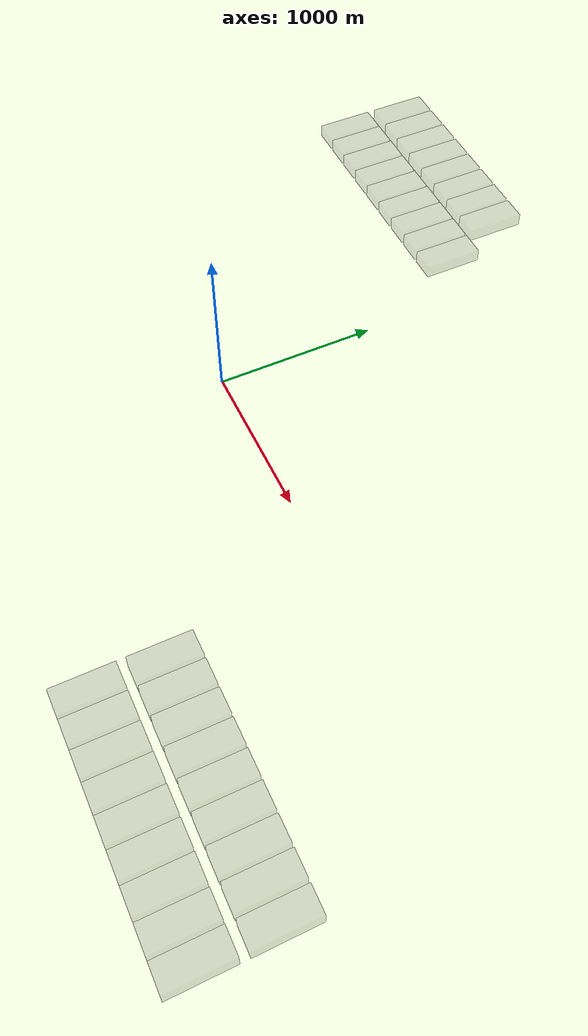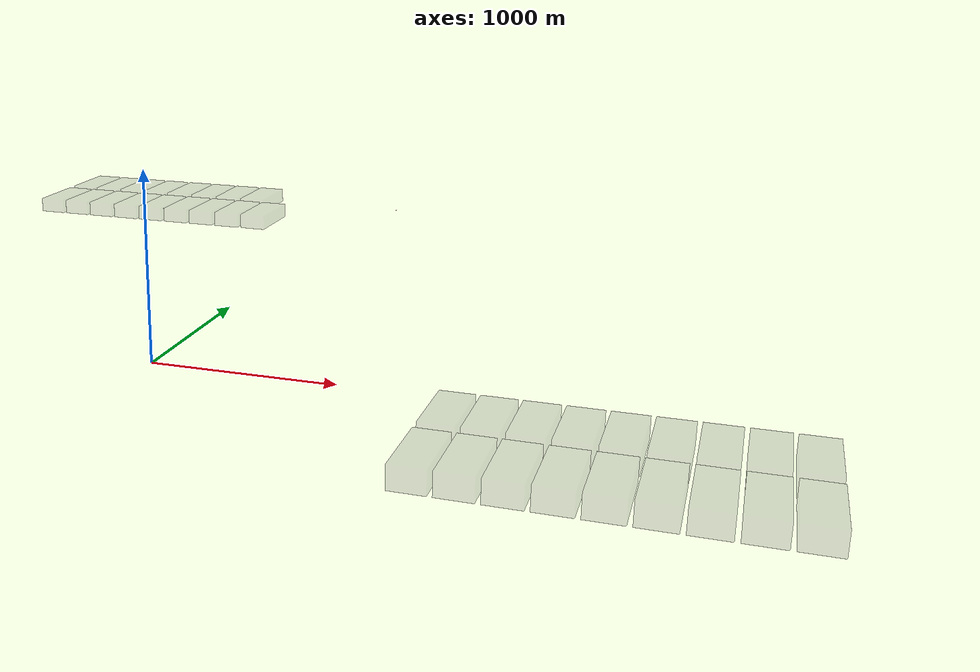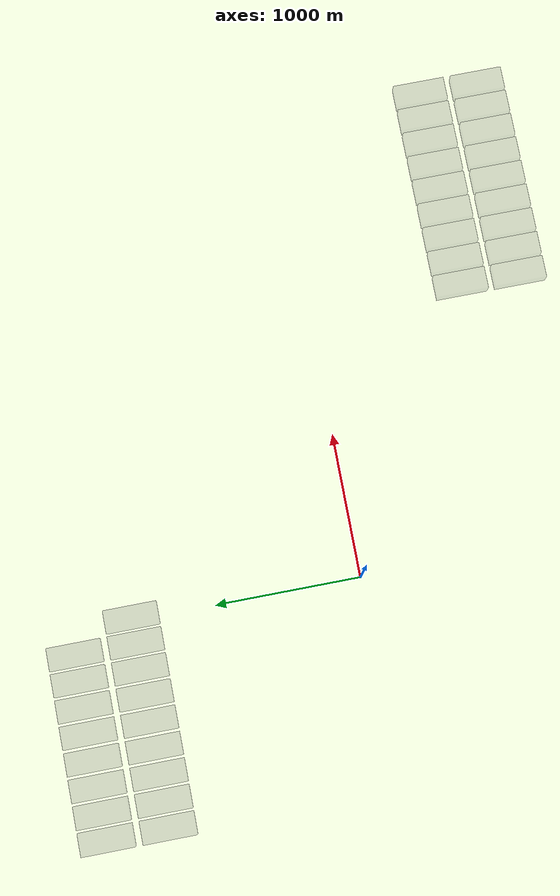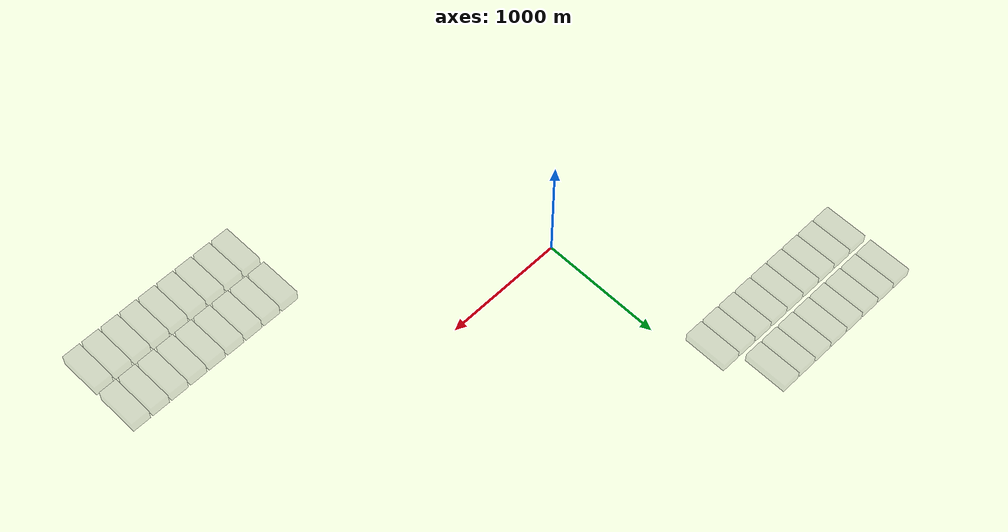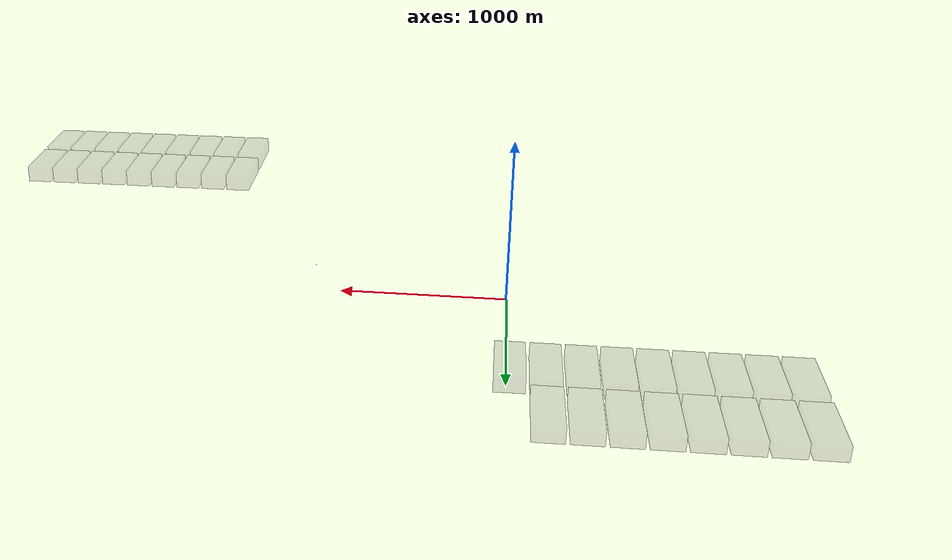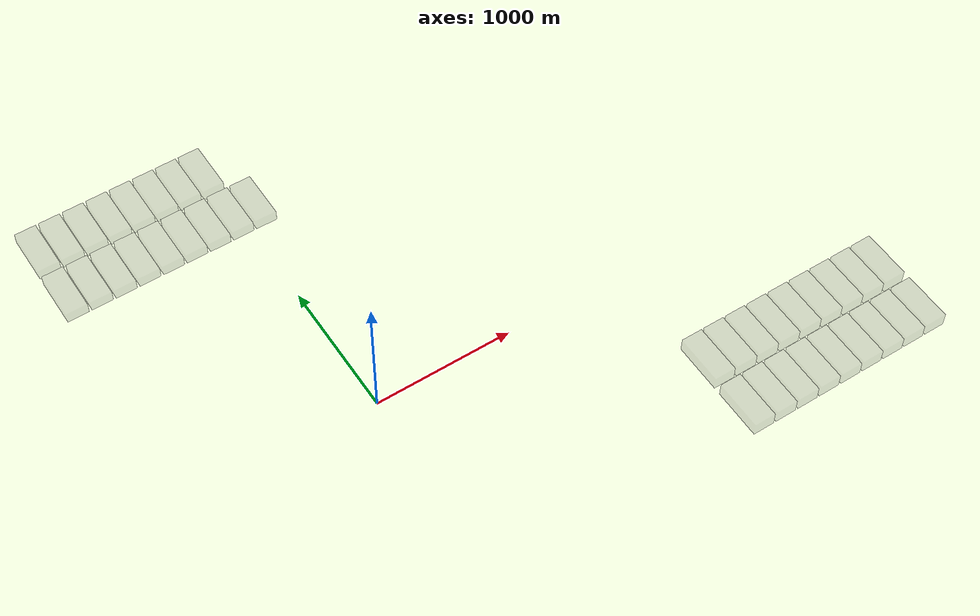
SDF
<sdf version="1.5">
 <world name="default">
  <spherical_coordinates>
   <latitude_deg>35.7753</latitude_deg>
   <longitude_deg>-120.774</longitude_deg>
   <elevation>208</elevation>
   <heading_deg>0</heading_deg>
   <surface_model>EARTH_WGS84</surface_model>
  </spherical_coordinates>
  <scene><shadows>0</shadows><ambient>0.4 0.4 0.4 1</ambient><background>0.7 0.7 0.7 1</background></scene>
  <light name="sun" type="directional">
   <pose>0 0 10 0 -0 0</pose>
   <diffuse>0.8 0.8 0.8 1</diffuse>
   <specular>0.2 0.2 0.2 1</specular>
   <attenuation>
    <range>1000</range>
    <constant>0.9</constant>
    <linear>0.01</linear>
    <quadratic>0.001</quadratic>
   </attenuation>
   <direction>-0.5 0.1 -0.9</direction>
  </light>
  <physics name="default_physics" default="0" type="ode">
   <ode>
    <solver>
     <type>world</type>
     <iters>50</iters>
     <sor>1.3</sor>
     <use_dynamic_moi_rescaling>0</use_dynamic_moi_rescaling>
    </solver>
    <constraints>
     <cfm>0</cfm>
     <erp>0.2</erp>
     <contact_max_correcting_vel>100</contact_max_correcting_vel>
     <contact_surface_layer>0.001</contact_surface_layer>
    </constraints>
   </ode>
   <max_step_size>0.01</max_step_size>
   <real_time_update_rate>100</real_time_update_rate>
   <real_time_factor>1</real_time_factor>
   <gravity>0 0 -9.8</gravity>
   <magnetic_field>6e-06 2.3e-05 -4.2e-05</magnetic_field>
  </physics>
  <plugin name="swarm_broker" filename="libSwarmBrokerPlugin.so">
   <comms_model>
    <neighbor_distance_min>0.0</neighbor_distance_min>
    <neighbor_distance_max>250.0</neighbor_distance_max>
    <neighbor_distance_penalty_tree>200.0</neighbor_distance_penalty_tree>
    <comms_distance_min>0.0</comms_distance_min>
    <comms_distance_max>250.0</comms_distance_max>
    <comms_distance_penalty_tree>200.0</comms_distance_penalty_tree>
    <comms_drop_probability_min>0.0</comms_drop_probability_min>
    <comms_drop_probability_max>0.05</comms_drop_probability_max>
    <comms_outage_probability>0.1</comms_outage_probability>
    <comms_outage_duration_min>1.0</comms_outage_duration_min>
    <comms_outage_duration_max>2.0</comms_outage_duration_max>
    <comms_data_rate_max>54000000</comms_data_rate_max>
   </comms_model>
  </plugin>
  <model name="lost_person">
   <pose>999.102 1001.25 651.971 -0.062601 -0.18474 0.007102</pose>
   <link name="link">
    <sensor name="gps" type="gps"><always_on>1</always_on></sensor>
    <kinematic>1</kinematic>
    <collision name="collision">
     <geometry><box><size>1 1 1</size></box></geometry>
     <surface><friction><ode><mu>0</mu><mu2>0</mu2></ode></friction></surface>
    </collision>
    <visual name="visual"><geometry><box><size>1 1 1</size></box></geometry></visual>
    <visual name="visual_ul">
     <pose>0.5 0.5 0.5 0 -0 0</pose>
     <geometry><sphere><radius>0.04</radius></sphere></geometry>
     <material><script><name>Gazebo/Red</name><uri>__default__</uri></script></material>
    </visual>
    <visual name="visual_ur">
     <pose>0.5 -0.5 0.5 0 -0 0</pose>
     <geometry><sphere><radius>0.04</radius></sphere></geometry>
     <material><script><name>Gazebo/Green</name><uri>__default__</uri></script></material>
    </visual>
    <visual name="visual_lr">
     <pose>-0.5 -0.5 0.5 0 -0 0</pose>
     <geometry><sphere><radius>0.04</radius></sphere></geometry>
     <material><script><name>Gazebo/Blue</name><uri>__default__</uri></script></material>
    </visual>
    <visual name="visual_ll">
     <pose>-0.5 0.5 0.5 0 -0 0</pose>
     <geometry><sphere><radius>0.04</radius></sphere></geometry>
     <material><script><name>Gazebo/Yellow</name><uri>__default__</uri></script></material>
    </visual>
    <inertial>
     <inertia><ixx>1</ixx><ixy>0</ixy><ixz>0</ixz><iyy>1</iyy><iyz>0</iyz><izz>1</izz></inertia>
     <mass>1</mass>
    </inertial>
   </link>
   <plugin name="random" filename="libLostPersonControllerPlugin.so">
    <initial_velocity>0 0.2 0</initial_velocity>
    <velocity_factor>0.5</velocity_factor>
    <update_period>10</update_period>
    <gps>link::gps</gps>
    <swarm_search_area>
     <min_relative_latitude_deg>-0.01</min_relative_latitude_deg>
     <max_relative_latitude_deg>0.01</max_relative_latitude_deg>
     <min_relative_longitude_deg>-0.01</min_relative_longitude_deg>
     <max_relative_longitude_deg>0.01</max_relative_longitude_deg>
    </swarm_search_area>
   </plugin>
  </model>
  <model name="boo">
   <pose>0 0 785.866 -0.185171 0 0</pose>
   <static>1</static>
   <link name="link">
    <kinematic>1</kinematic>
    <collision name="collision">
     <geometry><box><size>1 1 1</size></box></geometry>
     <surface><friction><ode><mu>0</mu><mu2>0</mu2></ode></friction></surface>
    </collision>
    <visual name="visual"><geometry><box><size>1 1 1</size></box></geometry></visual>
   </link>
   <plugin name="boo" filename="libBooControllerPlugin.so">
    <lost_person_model>lost_person</lost_person_model>
    <address>boo</address>
    <type>boo</type>
    <swarm_search_area>
     <min_relative_latitude_deg>-0.01</min_relative_latitude_deg>
     <max_relative_latitude_deg>0.01</max_relative_latitude_deg>
     <min_relative_longitude_deg>-0.01</min_relative_longitude_deg>
     <max_relative_longitude_deg>0.01</max_relative_longitude_deg>
    </swarm_search_area>
   </plugin>
  </model>
  <model name="building_group1_0">
   <pose>0 1535 425 0 -0 0</pose>
   <static>1</static>
   <link name="link">
    <visual name="visual">
     <geometry><box><size>150 350 80</size></box></geometry>
     <material><ambient>0.2 0.2 0.2 0.2</ambient><diffuse>0.2 0.2 0.2 0.2</diffuse></material>
    </visual>
    <collision name="collision"><geometry><box><size>150 350 80</size></box></geometry></collision>
   </link>
  </model>
  <model name="building_group1_1">
   <pose>-170 1535 425 0 -0 0</pose>
   <static>1</static>
   <link name="link">
    <visual name="visual">
     <geometry><box><size>150 350 80</size></box></geometry>
     <material><ambient>0.2 0.2 0.2 0.2</ambient><diffuse>0.2 0.2 0.2 0.2</diffuse></material>
    </visual>
    <collision name="collision"><geometry><box><size>150 350 80</size></box></geometry></collision>
   </link>
  </model>
  <model name="building_group1_2">
   <pose>-340 1535 425 0 -0 0</pose>
   <static>1</static>
   <link name="link">
    <visual name="visual">
     <geometry><box><size>150 350 80</size></box></geometry>
     <material><ambient>0.2 0.2 0.2 0.2</ambient><diffuse>0.2 0.2 0.2 0.2</diffuse></material>
    </visual>
    <collision name="collision"><geometry><box><size>150 350 80</size></box></geometry></collision>
   </link>
  </model>
  <model name="building_group1_3">
   <pose>-510 1535 425 0 -0 0</pose>
   <static>1</static>
   <link name="link">
    <visual name="visual">
     <geometry><box><size>150 350 80</size></box></geometry>
     <material><ambient>0.2 0.2 0.2 0.2</ambient><diffuse>0.2 0.2 0.2 0.2</diffuse></material>
    </visual>
    <collision name="collision"><geometry><box><size>150 350 80</size></box></geometry></collision>
   </link>
  </model>
  <model name="building_group1_4">
   <pose>-680 1535 425 0 -0 0</pose>
   <static>1</static>
   <link name="link">
    <visual name="visual">
     <geometry><box><size>150 350 80</size></box></geometry>
     <material><ambient>0.2 0.2 0.2 0.2</ambient><diffuse>0.2 0.2 0.2 0.2</diffuse></material>
    </visual>
    <collision name="collision"><geometry><box><size>150 350 80</size></box></geometry></collision>
   </link>
  </model>
  <model name="building_group1_5">
   <pose>-850 1535 425 0 -0 0</pose>
   <static>1</static>
   <link name="link">
    <visual name="visual">
     <geometry><box><size>150 350 80</size></box></geometry>
     <material><ambient>0.2 0.2 0.2 0.2</ambient><diffuse>0.2 0.2 0.2 0.2</diffuse></material>
    </visual>
    <collision name="collision"><geometry><box><size>150 350 80</size></box></geometry></collision>
   </link>
  </model>
  <model name="building_group1_6">
   <pose>-1020 1535 425 0 -0 0</pose>
   <static>1</static>
   <link name="link">
    <visual name="visual">
     <geometry><box><size>150 350 80</size></box></geometry>
     <material><ambient>0.2 0.2 0.2 0.2</ambient><diffuse>0.2 0.2 0.2 0.2</diffuse></material>
    </visual>
    <collision name="collision"><geometry><box><size>150 350 80</size></box></geometry></collision>
   </link>
  </model>
  <model name="building_group1_7">
   <pose>-1190 1535 425 0 -0 0</pose>
   <static>1</static>
   <link name="link">
    <visual name="visual">
     <geometry><box><size>150 350 80</size></box></geometry>
     <material><ambient>0.2 0.2 0.2 0.2</ambient><diffuse>0.2 0.2 0.2 0.2</diffuse></material>
    </visual>
    <collision name="collision"><geometry><box><size>150 350 80</size></box></geometry></collision>
   </link>
  </model>
  <model name="building_group1_8">
   <pose>-1360 1535 425 0 -0 0</pose>
   <static>1</static>
   <link name="link">
    <visual name="visual">
     <geometry><box><size>150 350 80</size></box></geometry>
     <material><ambient>0.2 0.2 0.2 0.2</ambient><diffuse>0.2 0.2 0.2 0.2</diffuse></material>
    </visual>
    <collision name="collision"><geometry><box><size>150 350 80</size></box></geometry></collision>
   </link>
  </model>
  <model name="building_group1_8">
   <pose>-1360 1535 425 0 -0 0</pose>
   <static>1</static>
   <link name="link">
    <visual name="visual">
     <geometry><box><size>150 350 80</size></box></geometry>
     <material><ambient>0.2 0.2 0.2 0.2</ambient><diffuse>0.2 0.2 0.2 0.2</diffuse></material>
    </visual>
    <collision name="collision"><geometry><box><size>150 350 80</size></box></geometry></collision>
   </link>
  </model>
  <model name="building_group1_9">
   <pose>-170 1935 425 0 -0 0</pose>
   <static>1</static>
   <link name="link">
    <visual name="visual">
     <geometry><box><size>150 350 80</size></box></geometry>
     <material><ambient>0.2 0.2 0.2 0.2</ambient><diffuse>0.2 0.2 0.2 0.2</diffuse></material>
    </visual>
    <collision name="collision"><geometry><box><size>150 350 80</size></box></geometry></collision>
   </link>
  </model>
  <model name="building_group1_10">
   <pose>-340 1935 425 0 -0 0</pose>
   <static>1</static>
   <link name="link">
    <visual name="visual">
     <geometry><box><size>150 350 80</size></box></geometry>
     <material><ambient>0.2 0.2 0.2 0.2</ambient><diffuse>0.2 0.2 0.2 0.2</diffuse></material>
    </visual>
    <collision name="collision"><geometry><box><size>150 350 80</size></box></geometry></collision>
   </link>
  </model>
  <model name="building_group1_11">
   <pose>-510 1935 425 0 -0 0</pose>
   <static>1</static>
   <link name="link">
    <visual name="visual">
     <geometry><box><size>150 350 80</size></box></geometry>
     <material><ambient>0.2 0.2 0.2 0.2</ambient><diffuse>0.2 0.2 0.2 0.2</diffuse></material>
    </visual>
    <collision name="collision"><geometry><box><size>150 350 80</size></box></geometry></collision>
   </link>
  </model>
  <model name="building_group1_12">
   <pose>-680 1935 425 0 -0 0</pose>
   <static>1</static>
   <link name="link">
    <visual name="visual">
     <geometry><box><size>150 350 80</size></box></geometry>
     <material><ambient>0.2 0.2 0.2 0.2</ambient><diffuse>0.2 0.2 0.2 0.2</diffuse></material>
    </visual>
    <collision name="collision"><geometry><box><size>150 350 80</size></box></geometry></collision>
   </link>
  </model>
  <model name="building_group1_13">
   <pose>-850 1935 425 0 -0 0</pose>
   <static>1</static>
   <link name="link">
    <visual name="visual">
     <geometry><box><size>150 350 80</size></box></geometry>
     <material><ambient>0.2 0.2 0.2 0.2</ambient><diffuse>0.2 0.2 0.2 0.2</diffuse></material>
    </visual>
    <collision name="collision"><geometry><box><size>150 350 80</size></box></geometry></collision>
   </link>
  </model>
  <model name="building_group1_14">
   <pose>-1020 1935 425 0 -0 0</pose>
   <static>1</static>
   <link name="link">
    <visual name="visual">
     <geometry><box><size>150 350 80</size></box></geometry>
     <material><ambient>0.2 0.2 0.2 0.2</ambient><diffuse>0.2 0.2 0.2 0.2</diffuse></material>
    </visual>
    <collision name="collision"><geometry><box><size>150 350 80</size></box></geometry></collision>
   </link>
  </model>
  <model name="building_group1_15">
   <pose>-1190 1935 425 0 -0 0</pose>
   <static>1</static>
   <link name="link">
    <visual name="visual">
     <geometry><box><size>150 350 80</size></box></geometry>
     <material><ambient>0.2 0.2 0.2 0.2</ambient><diffuse>0.2 0.2 0.2 0.2</diffuse></material>
    </visual>
    <collision name="collision"><geometry><box><size>150 350 80</size></box></geometry></collision>
   </link>
  </model>
  <model name="building_group1_16">
   <pose>-1360 1935 425 0 -0 0</pose>
   <static>1</static>
   <link name="link">
    <visual name="visual">
     <geometry><box><size>150 350 80</size></box></geometry>
     <material><ambient>0.2 0.2 0.2 0.2</ambient><diffuse>0.2 0.2 0.2 0.2</diffuse></material>
    </visual>
    <collision name="collision"><geometry><box><size>150 350 80</size></box></geometry></collision>
   </link>
  </model>
  <model name="building_group2_0">
   <pose>1800 -1030 330 0 -0 0</pose>
   <static>1</static>
   <link name="link">
    <visual name="visual">
     <geometry><box><size>150 350 100</size></box></geometry>
     <material><ambient>0.2 0.2 0.2 0.2</ambient><diffuse>0.2 0.2 0.2 0.2</diffuse></material>
    </visual>
    <collision name="collision"><geometry><box><size>150 350 80</size></box></geometry></collision>
   </link>
  </model>
  <model name="building_group2_1">
   <pose>1970 -1030 330 0 -0 0</pose>
   <static>1</static>
   <link name="link">
    <visual name="visual">
     <geometry><box><size>150 350 100</size></box></geometry>
     <material><ambient>0.2 0.2 0.2 0.2</ambient><diffuse>0.2 0.2 0.2 0.2</diffuse></material>
    </visual>
    <collision name="collision"><geometry><box><size>150 350 80</size></box></geometry></collision>
   </link>
  </model>
  <model name="building_group2_2">
   <pose>2140 -1030 330 0 -0 0</pose>
   <static>1</static>
   <link name="link">
    <visual name="visual">
     <geometry><box><size>150 350 100</size></box></geometry>
     <material><ambient>0.2 0.2 0.2 0.2</ambient><diffuse>0.2 0.2 0.2 0.2</diffuse></material>
    </visual>
    <collision name="collision"><geometry><box><size>150 350 80</size></box></geometry></collision>
   </link>
  </model>
  <model name="building_group2_3">
   <pose>2310 -1030 330 0 -0 0</pose>
   <static>1</static>
   <link name="link">
    <visual name="visual">
     <geometry><box><size>150 350 100</size></box></geometry>
     <material><ambient>0.2 0.2 0.2 0.2</ambient><diffuse>0.2 0.2 0.2 0.2</diffuse></material>
    </visual>
    <collision name="collision"><geometry><box><size>150 350 80</size></box></geometry></collision>
   </link>
  </model>
  <model name="building_group2_4">
   <pose>2480 -1030 330 0 -0 0</pose>
   <static>1</static>
   <link name="link">
    <visual name="visual">
     <geometry><box><size>150 350 100</size></box></geometry>
     <material><ambient>0.2 0.2 0.2 0.2</ambient><diffuse>0.2 0.2 0.2 0.2</diffuse></material>
    </visual>
    <collision name="collision"><geometry><box><size>150 350 80</size></box></geometry></collision>
   </link>
  </model>
  <model name="building_group2_5">
   <pose>2650 -1030 330 0 -0 0</pose>
   <static>1</static>
   <link name="link">
    <visual name="visual">
     <geometry><box><size>150 350 100</size></box></geometry>
     <material><ambient>0.2 0.2 0.2 0.2</ambient><diffuse>0.2 0.2 0.2 0.2</diffuse></material>
    </visual>
    <collision name="collision"><geometry><box><size>150 350 80</size></box></geometry></collision>
   </link>
  </model>
  <model name="building_group2_6">
   <pose>2820 -1030 330 0 -0 0</pose>
   <static>1</static>
   <link name="link">
    <visual name="visual">
     <geometry><box><size>150 350 100</size></box></geometry>
     <material><ambient>0.2 0.2 0.2 0.2</ambient><diffuse>0.2 0.2 0.2 0.2</diffuse></material>
    </visual>
    <collision name="collision"><geometry><box><size>150 350 80</size></box></geometry></collision>
   </link>
  </model>
  <model name="building_group2_7">
   <pose>2990 -1030 330 0 -0 0</pose>
   <static>1</static>
   <link name="link">
    <visual name="visual">
     <geometry><box><size>150 350 100</size></box></geometry>
     <material><ambient>0.2 0.2 0.2 0.2</ambient><diffuse>0.2 0.2 0.2 0.2</diffuse></material>
    </visual>
    <collision name="collision"><geometry><box><size>150 350 80</size></box></geometry></collision>
   </link>
  </model>
  <model name="building_group2_8">
   <pose>3160 -1030 330 0 -0 0</pose>
   <static>1</static>
   <link name="link">
    <visual name="visual">
     <geometry><box><size>150 350 100</size></box></geometry>
     <material><ambient>0.2 0.2 0.2 0.2</ambient><diffuse>0.2 0.2 0.2 0.2</diffuse></material>
    </visual>
    <collision name="collision"><geometry><box><size>150 350 80</size></box></geometry></collision>
   </link>
  </model>
  <model name="building_group2_10">
   <pose>1800 -1430 330 0 -0 0</pose>
   <static>1</static>
   <link name="link">
    <visual name="visual">
     <geometry><box><size>150 350 100</size></box></geometry>
     <material><ambient>0.2 0.2 0.2 0.2</ambient><diffuse>0.2 0.2 0.2 0.2</diffuse></material>
    </visual>
    <collision name="collision"><geometry><box><size>150 350 80</size></box></geometry></collision>
   </link>
  </model>
  <model name="building_group2_11">
   <pose>1970 -1430 330 0 -0 0</pose>
   <static>1</static>
   <link name="link">
    <visual name="visual">
     <geometry><box><size>150 350 100</size></box></geometry>
     <material><ambient>0.2 0.2 0.2 0.2</ambient><diffuse>0.2 0.2 0.2 0.2</diffuse></material>
    </visual>
    <collision name="collision"><geometry><box><size>150 350 80</size></box></geometry></collision>
   </link>
  </model>
  <model name="building_group2_12">
   <pose>2140 -1430 330 0 -0 0</pose>
   <static>1</static>
   <link name="link">
    <visual name="visual">
     <geometry><box><size>150 350 100</size></box></geometry>
     <material><ambient>0.2 0.2 0.2 0.2</ambient><diffuse>0.2 0.2 0.2 0.2</diffuse></material>
    </visual>
    <collision name="collision"><geometry><box><size>150 350 80</size></box></geometry></collision>
   </link>
  </model>
  <model name="building_group2_13">
   <pose>2310 -1430 330 0 -0 0</pose>
   <static>1</static>
   <link name="link">
    <visual name="visual">
     <geometry><box><size>150 350 100</size></box></geometry>
     <material><ambient>0.2 0.2 0.2 0.2</ambient><diffuse>0.2 0.2 0.2 0.2</diffuse></material>
    </visual>
    <collision name="collision"><geometry><box><size>150 350 80</size></box></geometry></collision>
   </link>
  </model>
  <model name="building_group2_14">
   <pose>2480 -1430 330 0 -0 0</pose>
   <static>1</static>
   <link name="link">
    <visual name="visual">
     <geometry><box><size>150 350 100</size></box></geometry>
     <material><ambient>0.2 0.2 0.2 0.2</ambient><diffuse>0.2 0.2 0.2 0.2</diffuse></material>
    </visual>
    <collision name="collision"><geometry><box><size>150 350 80</size></box></geometry></collision>
   </link>
  </model>
  <model name="building_group2_15">
   <pose>2650 -1430 330 0 -0 0</pose>
   <static>1</static>
   <link name="link">
    <visual name="visual">
     <geometry><box><size>150 350 100</size></box></geometry>
     <material><ambient>0.2 0.2 0.2 0.2</ambient><diffuse>0.2 0.2 0.2 0.2</diffuse></material>
    </visual>
    <collision name="collision"><geometry><box><size>150 350 80</size></box></geometry></collision>
   </link>
  </model>
  <model name="building_group2_16">
   <pose>2820 -1430 330 0 -0 0</pose>
   <static>1</static>
   <link name="link">
    <visual name="visual">
     <geometry><box><size>150 350 100</size></box></geometry>
     <material><ambient>0.2 0.2 0.2 0.2</ambient><diffuse>0.2 0.2 0.2 0.2</diffuse></material>
    </visual>
    <collision name="collision"><geometry><box><size>150 350 80</size></box></geometry></collision>
   </link>
  </model>
  <model name="building_group2_17">
   <pose>2990 -1430 330 0 -0 0</pose>
   <static>1</static>
   <link name="link">
    <visual name="visual">
     <geometry><box><size>150 350 100</size></box></geometry>
     <material><ambient>0.2 0.2 0.2 0.2</ambient><diffuse>0.2 0.2 0.2 0.2</diffuse></material>
    </visual>
    <collision name="collision"><geometry><box><size>150 350 80</size></box></geometry></collision>
   </link>
  </model>
  <model name="building_group2_18">
   <pose>3160 -1430 330 0 -0 0</pose>
   <static>1</static>
   <link name="link">
    <visual name="visual">
     <geometry><box><size>150 350 100</size></box></geometry>
     <material><ambient>0.2 0.2 0.2 0.2</ambient><diffuse>0.2 0.2 0.2 0.2</diffuse></material>
    </visual>
    <collision name="collision"><geometry><box><size>150 350 80</size></box></geometry></collision>
   </link>
  </model>
  <model name="rotor_0">
   <pose>0 0 790.156 0 0 -0.474</pose>
   <link name="link">
    <sensor name="gps" type="gps">
     <gps>
      <position_sensing>
       <horizontal>
        <noise type="gaussian_quantized">
         <mean>0</mean>
         <stddev>4</stddev>
         <bias_mean>0</bias_mean>
         <bias_stddev>0</bias_stddev>
         <precision>0.001</precision>
        </noise>
       </horizontal>
       <vertical>
        <noise type="gaussian_quantized">
         <mean>0</mean>
         <stddev>8</stddev>
         <bias_mean>0</bias_mean>
         <bias_stddev>0</bias_stddev>
         <precision>0.01</precision>
        </noise>
       </vertical>
      </position_sensing>
      <velocity_sensing>
       <horizontal>
        <noise type="gaussian_quantized">
         <mean>0</mean>
         <stddev>4</stddev>
         <bias_mean>0</bias_mean>
         <bias_stddev>0</bias_stddev>
         <precision>0.001</precision>
        </noise>
       </horizontal>
       <vertical>
        <noise type="gaussian_quantized">
         <mean>0</mean>
         <stddev>8</stddev>
         <bias_mean>0</bias_mean>
         <bias_stddev>0</bias_stddev>
         <precision>0.01</precision>
        </noise>
       </vertical>
      </velocity_sensing>
     </gps>
     <always_on>1</always_on>
    </sensor>
    <sensor name="imu" type="imu">
     <imu>
      <angular_velocity>
       <x>
        <noise type="gaussian">
         <mean>0</mean>
         <stddev>0.0002</stddev>
         <bias_mean>7.5e-06</bias_mean>
         <bias_stddev>8e-07</bias_stddev>
        </noise>
       </x>
       <y>
        <noise type="gaussian">
         <mean>0</mean>
         <stddev>0.0002</stddev>
         <bias_mean>7.5e-06</bias_mean>
         <bias_stddev>8e-07</bias_stddev>
        </noise>
       </y>
       <z>
        <noise type="gaussian">
         <mean>0</mean>
         <stddev>0.0002</stddev>
         <bias_mean>7.5e-06</bias_mean>
         <bias_stddev>8e-07</bias_stddev>
        </noise>
       </z>
      </angular_velocity>
      <linear_acceleration>
       <x>
        <noise type="gaussian">
         <mean>0</mean>
         <stddev>0.0002</stddev>
         <bias_mean>7.5e-06</bias_mean>
         <bias_stddev>8e-07</bias_stddev>
        </noise>
       </x>
       <y>
        <noise type="gaussian">
         <mean>0</mean>
         <stddev>0.0002</stddev>
         <bias_mean>7.5e-06</bias_mean>
         <bias_stddev>8e-07</bias_stddev>
        </noise>
       </y>
       <z>
        <noise type="gaussian">
         <mean>0</mean>
         <stddev>0.0002</stddev>
         <bias_mean>7.5e-06</bias_mean>
         <bias_stddev>8e-07</bias_stddev>
        </noise>
       </z>
      </linear_acceleration>
     </imu>
     <always_on>1</always_on>
    </sensor>
    <sensor name="camera" type="logical_camera">
     <logical_camera>
      <near>0.1</near>
      <far>50</far>
      <horizontal_fov>1.4656</horizontal_fov>
      <aspect_ratio>1.778</aspect_ratio>
     </logical_camera>
     <visualize>0</visualize>
     <always_on>1</always_on>
    </sensor>
    <kinematic>1</kinematic>
    <gravity>0</gravity>
    <collision name="collision"><geometry><box><size>0.2 0.1 0.1</size></box></geometry></collision>
    <visual name="visual"><geometry><box><size>0.2 0.1 0.1</size></box></geometry></visual>
    <visual name="visual_front">
     <pose>0.07 0 0.04 0 -0 0</pose>
     <geometry><sphere><radius>0.04</radius></sphere></geometry>
     <material><script><name>Gazebo/Red</name><uri>__default__</uri></script></material>
    </visual>
    <visual name="visual_blade1">
     <pose>0 0 0.055 0 -0 0.78539</pose>
     <geometry><box><size>0.4 0.02 0.01</size></box></geometry>
     <material><script><name>Gazebo/Green</name><uri>__default__</uri></script></material>
    </visual>
    <visual name="visual_blade2">
     <pose>0 0 0.055 0 -0 2.3562</pose>
     <geometry><box><size>0.4 0.02 0.01</size></box></geometry>
     <material><script><name>Gazebo/Green</name><uri>__default__</uri></script></material>
    </visual>
    <inertial>
     <inertia><ixx>1</ixx><ixy>0</ixy><ixz>0</ixz><iyy>1</iyy><iyz>0</iyz><izz>1</izz></inertia>
     <mass>1</mass>
    </inertial>
   </link>
   <plugin name="swarm_controller_rotor_0" filename="libTeamControllerPlugin.so">
    <type>rotor</type>
    <camera>link::camera</camera>
    <gps>link::gps</gps>
    <imu>link::imu</imu>
    <address>192.168.1.1</address>
    <num_messages>1</num_messages>
    <swarm_search_area>
     <min_relative_latitude_deg>-0.01</min_relative_latitude_deg>
     <max_relative_latitude_deg>0.01</max_relative_latitude_deg>
     <min_relative_longitude_deg>-0.01</min_relative_longitude_deg>
     <max_relative_longitude_deg>0.01</max_relative_longitude_deg>
    </swarm_search_area>
    <battery>
     <capacity>3500</capacity>
     <consumption>1500</consumption>
     <consumption_factor>0.8</consumption_factor>
    </battery>
   </plugin>
  </model>
  <model name="rotor_1">
   <pose>1 0 790.093 0 0 -0.474</pose>
   <link name="link">
    <sensor name="gps" type="gps">
     <gps>
      <position_sensing>
       <horizontal>
        <noise type="gaussian_quantized">
         <mean>0</mean>
         <stddev>4</stddev>
         <bias_mean>0</bias_mean>
         <bias_stddev>0</bias_stddev>
         <precision>0.001</precision>
        </noise>
       </horizontal>
       <vertical>
        <noise type="gaussian_quantized">
         <mean>0</mean>
         <stddev>8</stddev>
         <bias_mean>0</bias_mean>
         <bias_stddev>0</bias_stddev>
         <precision>0.01</precision>
        </noise>
       </vertical>
      </position_sensing>
      <velocity_sensing>
       <horizontal>
        <noise type="gaussian_quantized">
         <mean>0</mean>
         <stddev>4</stddev>
         <bias_mean>0</bias_mean>
         <bias_stddev>0</bias_stddev>
         <precision>0.001</precision>
        </noise>
       </horizontal>
       <vertical>
        <noise type="gaussian_quantized">
         <mean>0</mean>
         <stddev>8</stddev>
         <bias_mean>0</bias_mean>
         <bias_stddev>0</bias_stddev>
         <precision>0.01</precision>
        </noise>
       </vertical>
      </velocity_sensing>
     </gps>
     <always_on>1</always_on>
    </sensor>
    <sensor name="imu" type="imu">
     <imu>
      <angular_velocity>
       <x>
        <noise type="gaussian">
         <mean>0</mean>
         <stddev>0.0002</stddev>
         <bias_mean>7.5e-06</bias_mean>
         <bias_stddev>8e-07</bias_stddev>
        </noise>
       </x>
       <y>
        <noise type="gaussian">
         <mean>0</mean>
         <stddev>0.0002</stddev>
         <bias_mean>7.5e-06</bias_mean>
         <bias_stddev>8e-07</bias_stddev>
        </noise>
       </y>
       <z>
        <noise type="gaussian">
         <mean>0</mean>
         <stddev>0.0002</stddev>
         <bias_mean>7.5e-06</bias_mean>
         <bias_stddev>8e-07</bias_stddev>
        </noise>
       </z>
      </angular_velocity>
      <linear_acceleration>
       <x>
        <noise type="gaussian">
         <mean>0</mean>
         <stddev>0.0002</stddev>
         <bias_mean>7.5e-06</bias_mean>
         <bias_stddev>8e-07</bias_stddev>
        </noise>
       </x>
       <y>
        <noise type="gaussian">
         <mean>0</mean>
         <stddev>0.0002</stddev>
         <bias_mean>7.5e-06</bias_mean>
         <bias_stddev>8e-07</bias_stddev>
        </noise>
       </y>
       <z>
        <noise type="gaussian">
         <mean>0</mean>
         <stddev>0.0002</stddev>
         <bias_mean>7.5e-06</bias_mean>
         <bias_stddev>8e-07</bias_stddev>
        </noise>
       </z>
      </linear_acceleration>
     </imu>
     <always_on>1</always_on>
    </sensor>
    <sensor name="camera" type="logical_camera">
     <logical_camera>
      <near>0.1</near>
      <far>50</far>
      <horizontal_fov>1.4656</horizontal_fov>
      <aspect_ratio>1.778</aspect_ratio>
     </logical_camera>
     <visualize>0</visualize>
     <always_on>1</always_on>
    </sensor>
    <kinematic>1</kinematic>
    <gravity>0</gravity>
    <collision name="collision"><geometry><box><size>0.2 0.1 0.1</size></box></geometry></collision>
    <visual name="visual"><geometry><box><size>0.2 0.1 0.1</size></box></geometry></visual>
    <visual name="visual_front">
     <pose>0.07 0 0.04 0 -0 0</pose>
     <geometry><sphere><radius>0.04</radius></sphere></geometry>
     <material><script><name>Gazebo/Red</name><uri>__default__</uri></script></material>
    </visual>
    <visual name="visual_blade1">
     <pose>0 0 0.055 0 -0 0.78539</pose>
     <geometry><box><size>0.4 0.02 0.01</size></box></geometry>
     <material><script><name>Gazebo/Green</name><uri>__default__</uri></script></material>
    </visual>
    <visual name="visual_blade2">
     <pose>0 0 0.055 0 -0 2.3562</pose>
     <geometry><box><size>0.4 0.02 0.01</size></box></geometry>
     <material><script><name>Gazebo/Green</name><uri>__default__</uri></script></material>
    </visual>
    <inertial>
     <inertia><ixx>1</ixx><ixy>0</ixy><ixz>0</ixz><iyy>1</iyy><iyz>0</iyz><izz>1</izz></inertia>
     <mass>1</mass>
    </inertial>
   </link>
   <plugin name="swarm_controller_rotor_1" filename="libTeamControllerPlugin.so">
    <type>rotor</type>
    <camera>link::camera</camera>
    <gps>link::gps</gps>
    <imu>link::imu</imu>
    <address>192.168.1.2</address>
    <num_messages>1</num_messages>
    <swarm_search_area>
     <min_relative_latitude_deg>-0.01</min_relative_latitude_deg>
     <max_relative_latitude_deg>0.01</max_relative_latitude_deg>
     <min_relative_longitude_deg>-0.01</min_relative_longitude_deg>
     <max_relative_longitude_deg>0.01</max_relative_longitude_deg>
    </swarm_search_area>
    <battery>
     <capacity>3500</capacity>
     <consumption>1500</consumption>
     <consumption_factor>0.8</consumption_factor>
    </battery>
   </plugin>
  </model>
  <model name="rotor_2">
   <pose>2 0 790.031 0 0 -0.474</pose>
   <link name="link">
    <sensor name="gps" type="gps">
     <gps>
      <position_sensing>
       <horizontal>
        <noise type="gaussian_quantized">
         <mean>0</mean>
         <stddev>4</stddev>
         <bias_mean>0</bias_mean>
         <bias_stddev>0</bias_stddev>
         <precision>0.001</precision>
        </noise>
       </horizontal>
       <vertical>
        <noise type="gaussian_quantized">
         <mean>0</mean>
         <stddev>8</stddev>
         <bias_mean>0</bias_mean>
         <bias_stddev>0</bias_stddev>
         <precision>0.01</precision>
        </noise>
       </vertical>
      </position_sensing>
      <velocity_sensing>
       <horizontal>
        <noise type="gaussian_quantized">
         <mean>0</mean>
         <stddev>4</stddev>
         <bias_mean>0</bias_mean>
         <bias_stddev>0</bias_stddev>
         <precision>0.001</precision>
        </noise>
       </horizontal>
       <vertical>
        <noise type="gaussian_quantized">
         <mean>0</mean>
         <stddev>8</stddev>
         <bias_mean>0</bias_mean>
         <bias_stddev>0</bias_stddev>
         <precision>0.01</precision>
        </noise>
       </vertical>
      </velocity_sensing>
     </gps>
     <always_on>1</always_on>
    </sensor>
    <sensor name="imu" type="imu">
     <imu>
      <angular_velocity>
       <x>
        <noise type="gaussian">
         <mean>0</mean>
         <stddev>0.0002</stddev>
         <bias_mean>7.5e-06</bias_mean>
         <bias_stddev>8e-07</bias_stddev>
        </noise>
       </x>
       <y>
        <noise type="gaussian">
         <mean>0</mean>
         <stddev>0.0002</stddev>
         <bias_mean>7.5e-06</bias_mean>
         <bias_stddev>8e-07</bias_stddev>
        </noise>
       </y>
       <z>
        <noise type="gaussian">
         <mean>0</mean>
         <stddev>0.0002</stddev>
         <bias_mean>7.5e-06</bias_mean>
         <bias_stddev>8e-07</bias_stddev>
        </noise>
       </z>
      </angular_velocity>
      <linear_acceleration>
       <x>
        <noise type="gaussian">
         <mean>0</mean>
         <stddev>0.0002</stddev>
         <bias_mean>7.5e-06</bias_mean>
         <bias_stddev>8e-07</bias_stddev>
        </noise>
       </x>
       <y>
        <noise type="gaussian">
         <mean>0</mean>
         <stddev>0.0002</stddev>
         <bias_mean>7.5e-06</bias_mean>
         <bias_stddev>8e-07</bias_stddev>
        </noise>
       </y>
       <z>
        <noise type="gaussian">
         <mean>0</mean>
         <stddev>0.0002</stddev>
         <bias_mean>7.5e-06</bias_mean>
         <bias_stddev>8e-07</bias_stddev>
        </noise>
       </z>
      </linear_acceleration>
     </imu>
     <always_on>1</always_on>
    </sensor>
    <sensor name="camera" type="logical_camera">
     <logical_camera>
      <near>0.1</near>
      <far>50</far>
      <horizontal_fov>1.4656</horizontal_fov>
      <aspect_ratio>1.778</aspect_ratio>
     </logical_camera>
     <visualize>0</visualize>
     <always_on>1</always_on>
    </sensor>
    <kinematic>1</kinematic>
    <gravity>0</gravity>
    <collision name="collision"><geometry><box><size>0.2 0.1 0.1</size></box></geometry></collision>
    <visual name="visual"><geometry><box><size>0.2 0.1 0.1</size></box></geometry></visual>
    <visual name="visual_front">
     <pose>0.07 0 0.04 0 -0 0</pose>
     <geometry><sphere><radius>0.04</radius></sphere></geometry>
     <material><script><name>Gazebo/Red</name><uri>__default__</uri></script></material>
    </visual>
    <visual name="visual_blade1">
     <pose>0 0 0.055 0 -0 0.78539</pose>
     <geometry><box><size>0.4 0.02 0.01</size></box></geometry>
     <material><script><name>Gazebo/Green</name><uri>__default__</uri></script></material>
    </visual>
    <visual name="visual_blade2">
     <pose>0 0 0.055 0 -0 2.3562</pose>
     <geometry><box><size>0.4 0.02 0.01</size></box></geometry>
     <material><script><name>Gazebo/Green</name><uri>__default__</uri></script></material>
    </visual>
    <inertial>
     <inertia><ixx>1</ixx><ixy>0</ixy><ixz>0</ixz><iyy>1</iyy><iyz>0</iyz><izz>1</izz></inertia>
     <mass>1</mass>
    </inertial>
   </link>
   <plugin name="swarm_controller_rotor_2" filename="libTeamControllerPlugin.so">
    <type>rotor</type>
    <camera>link::camera</camera>
    <gps>link::gps</gps>
    <imu>link::imu</imu>
    <address>192.168.1.3</address>
    <num_messages>1</num_messages>
    <swarm_search_area>
     <min_relative_latitude_deg>-0.01</min_relative_latitude_deg>
     <max_relative_latitude_deg>0.01</max_relative_latitude_deg>
     <min_relative_longitude_deg>-0.01</min_relative_longitude_deg>
     <max_relative_longitude_deg>0.01</max_relative_longitude_deg>
    </swarm_search_area>
    <battery>
     <capacity>3500</capacity>
     <consumption>1500</consumption>
     <consumption_factor>0.8</consumption_factor>
    </battery>
   </plugin>
  </model>
  <model name="rotor_3">
   <pose>3 0 789.969 0 0 -0.474</pose>
   <link name="link">
    <sensor name="gps" type="gps">
     <gps>
      <position_sensing>
       <horizontal>
        <noise type="gaussian_quantized">
         <mean>0</mean>
         <stddev>4</stddev>
         <bias_mean>0</bias_mean>
         <bias_stddev>0</bias_stddev>
         <precision>0.001</precision>
        </noise>
       </horizontal>
       <vertical>
        <noise type="gaussian_quantized">
         <mean>0</mean>
         <stddev>8</stddev>
         <bias_mean>0</bias_mean>
         <bias_stddev>0</bias_stddev>
         <precision>0.01</precision>
        </noise>
       </vertical>
      </position_sensing>
      <velocity_sensing>
       <horizontal>
        <noise type="gaussian_quantized">
         <mean>0</mean>
         <stddev>4</stddev>
         <bias_mean>0</bias_mean>
         <bias_stddev>0</bias_stddev>
         <precision>0.001</precision>
        </noise>
       </horizontal>
       <vertical>
        <noise type="gaussian_quantized">
         <mean>0</mean>
         <stddev>8</stddev>
         <bias_mean>0</bias_mean>
         <bias_stddev>0</bias_stddev>
         <precision>0.01</precision>
        </noise>
       </vertical>
      </velocity_sensing>
     </gps>
     <always_on>1</always_on>
    </sensor>
    <sensor name="imu" type="imu">
     <imu>
      <angular_velocity>
       <x>
        <noise type="gaussian">
         <mean>0</mean>
         <stddev>0.0002</stddev>
         <bias_mean>7.5e-06</bias_mean>
         <bias_stddev>8e-07</bias_stddev>
        </noise>
       </x>
       <y>
        <noise type="gaussian">
         <mean>0</mean>
         <stddev>0.0002</stddev>
         <bias_mean>7.5e-06</bias_mean>
         <bias_stddev>8e-07</bias_stddev>
        </noise>
       </y>
       <z>
        <noise type="gaussian">
         <mean>0</mean>
         <stddev>0.0002</stddev>
         <bias_mean>7.5e-06</bias_mean>
         <bias_stddev>8e-07</bias_stddev>
        </noise>
       </z>
      </angular_velocity>
      <linear_acceleration>
       <x>
        <noise type="gaussian">
         <mean>0</mean>
         <stddev>0.0002</stddev>
         <bias_mean>7.5e-06</bias_mean>
         <bias_stddev>8e-07</bias_stddev>
        </noise>
       </x>
       <y>
        <noise type="gaussian">
         <mean>0</mean>
         <stddev>0.0002</stddev>
         <bias_mean>7.5e-06</bias_mean>
         <bias_stddev>8e-07</bias_stddev>
        </noise>
       </y>
       <z>
        <noise type="gaussian">
         <mean>0</mean>
         <stddev>0.0002</stddev>
         <bias_mean>7.5e-06</bias_mean>
         <bias_stddev>8e-07</bias_stddev>
        </noise>
       </z>
      </linear_acceleration>
     </imu>
     <always_on>1</always_on>
    </sensor>
    <sensor name="camera" type="logical_camera">
     <logical_camera>
      <near>0.1</near>
      <far>50</far>
      <horizontal_fov>1.4656</horizontal_fov>
      <aspect_ratio>1.778</aspect_ratio>
     </logical_camera>
     <visualize>0</visualize>
     <always_on>1</always_on>
    </sensor>
    <kinematic>1</kinematic>
    <gravity>0</gravity>
    <collision name="collision"><geometry><box><size>0.2 0.1 0.1</size></box></geometry></collision>
    <visual name="visual"><geometry><box><size>0.2 0.1 0.1</size></box></geometry></visual>
    <visual name="visual_front">
     <pose>0.07 0 0.04 0 -0 0</pose>
     <geometry><sphere><radius>0.04</radius></sphere></geometry>
     <material><script><name>Gazebo/Red</name><uri>__default__</uri></script></material>
    </visual>
    <visual name="visual_blade1">
     <pose>0 0 0.055 0 -0 0.78539</pose>
     <geometry><box><size>0.4 0.02 0.01</size></box></geometry>
     <material><script><name>Gazebo/Green</name><uri>__default__</uri></script></material>
    </visual>
    <visual name="visual_blade2">
     <pose>0 0 0.055 0 -0 2.3562</pose>
     <geometry><box><size>0.4 0.02 0.01</size></box></geometry>
     <material><script><name>Gazebo/Green</name><uri>__default__</uri></script></material>
    </visual>
    <inertial>
     <inertia><ixx>1</ixx><ixy>0</ixy><ixz>0</ixz><iyy>1</iyy><iyz>0</iyz><izz>1</izz></inertia>
     <mass>1</mass>
    </inertial>
   </link>
   <plugin name="swarm_controller_rotor_3" filename="libTeamControllerPlugin.so">
    <type>rotor</type>
    <camera>link::camera</camera>
    <gps>link::gps</gps>
    <imu>link::imu</imu>
    <address>192.168.1.4</address>
    <num_messages>1</num_messages>
    <swarm_search_area>
     <min_relative_latitude_deg>-0.01</min_relative_latitude_deg>
     <max_relative_latitude_deg>0.01</max_relative_latitude_deg>
     <min_relative_longitude_deg>-0.01</min_relative_longitude_deg>
     <max_relative_longitude_deg>0.01</max_relative_longitude_deg>
    </swarm_search_area>
    <battery>
     <capacity>3500</capacity>
     <consumption>1500</consumption>
     <consumption_factor>0.8</consumption_factor>
    </battery>
   </plugin>
  </model>
 </world>
</sdf>
